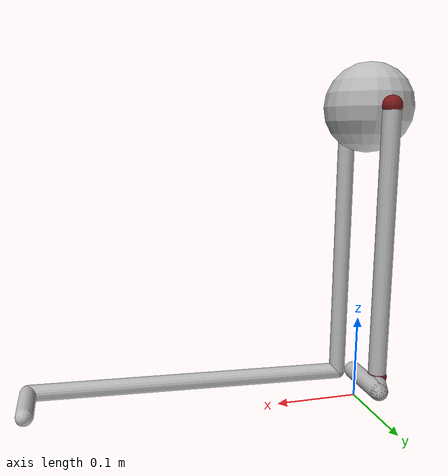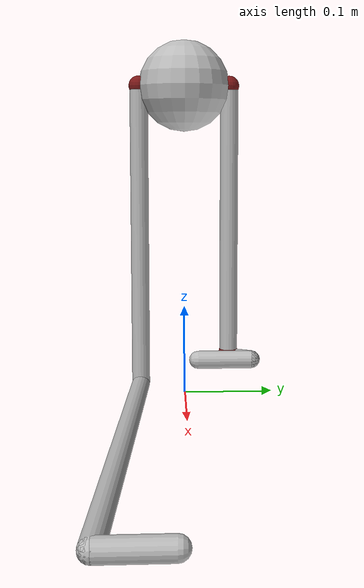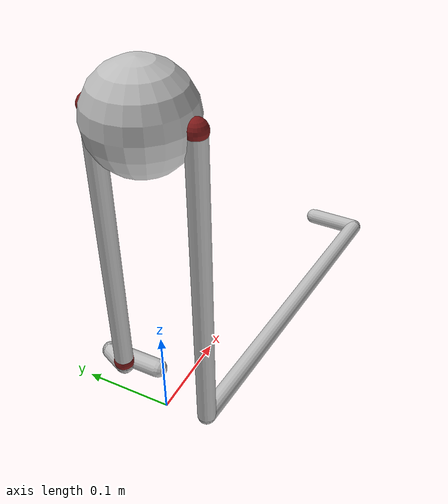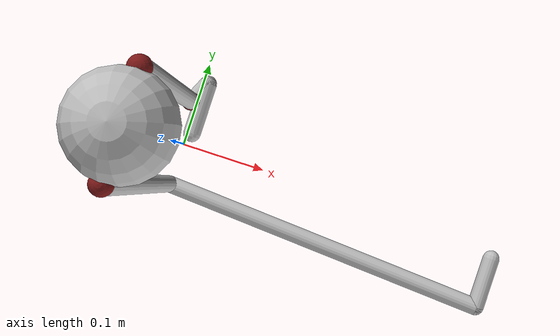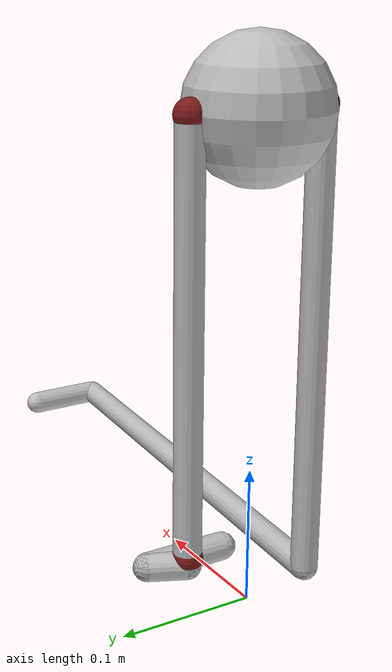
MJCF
<?xml version="1.0" ?>
<mujoco>
    <default>
        <joint armature="0.0" damping="0.01" type="hinge" range="-150 0" axis="0 -1 0"/>
        <geom condim="3" friction="1.5 1.0 1.0" margin="0.001"/>
        <default class="motor">
            <cylinder gear="100" ctrllimited="true" ctrlrange="-1 1"/>
        </default>
    </default>
    <worldbody>
        <body name="Base" pos="0.0 0.0 0.3477824980196569">
            <joint type="free"/>
            <geom type="sphere" rgba="0.75 0.75 0.75 1.0" size="0.05" mass="0.02"/>
            <body name="rod_0.1" pos="0.0 -0.05 -2.2448243122602095e-09">
                <geom name="geom_0.1" type="capsule" fromto="-0.0 -0.0 2.2448243122602095e-09 0.0 0.0 -2.2448243122602095e-09" size="0.01" rgba="0.75 0.75 0.75 1.0" density="159.15494309189535"/>
                <site name="site_0.1" pos="0 0 0" quat="0.7071067811865476 -0.0 0.7071067811865476 0.0"/>
                <joint name="joint_Base=rod_0.1" pos="-0.0 -0.0 2.2448243122602095e-09" range="-45 45"/>
                <body name="p0" pos="-0.0 -0.0 2.2448243122602095e-09">
                    <geom type="sphere" size="0.011000000000000001" rgba="0.5 0.1 0.1 1.0" density="23873.2414637843"/>
                    <site name="p0"/>
                </body>
                <body name="rod_1.2" pos="0.0 0.0 -0.16814124900982844">
                    <geom name="geom_1.2" type="capsule" fromto="-0.0 -0.0 0.16814124676500414 0.0 0.0 -0.16814124676500414" size="0.01" rgba="0.75 0.75 0.75 1.0" density="159.15494309189535"/>
                    <site name="site_1.2" pos="0 0 0" quat="0.7071067811865476 -0.0 0.7071067811865476 0.0"/>
                    <joint name="joint_rod_0.1=rod_1.2" pos="-0.0 -0.0 0.16814124676500414" range="-150 0"/>
                    <body name="p1" pos="-0.0 -0.0 0.16814124676500414">
                        <geom type="sphere" size="0.011000000000000001" rgba="0.5 0.1 0.1 1.0" density="23873.2414637843"/>
                        <site name="p1"/>
                    </body>
                    <body name="rod_2.3" pos="0.1955260503987358 -0.012500000000000004 -0.16814124676500414">
                        <geom name="geom_2.3" type="capsule" fromto="-0.1955260503987358 0.012500000000000004 -0.0 0.1955260503987358 -0.012500000000000004 0.0" size="0.01" rgba="0.75 0.75 0.75 1.0" density="159.15494309189535"/>
                        <site name="site_2.3" pos="0 0 0" quat="0.9994905487044292 0.0 0.0 -0.03191618790706488"/>
                        <body name="rod_3.4" pos="0.1955260503987358 0.017499999999999995 0.0">
                            <geom name="geom_3.4" type="capsule" fromto="-0.0 -0.03 -0.0 0.0 0.03 0.0" size="0.01" rgba="0.75 0.75 0.75 1.0" density="159.15494309189535"/>
                            <site name="site_3.4" pos="0 0 0" quat="0.7071067811865476 0.0 0.0 0.7071067811865476"/>
                        </body>
                    </body>
                </body>
            </body>
            <body name="rod_5.6" pos="0.0 0.05 -0.15057030342210137">
                <geom name="geom_5.6" type="capsule" fromto="-0.0 -0.0 0.15057030342210137 0.0 0.0 -0.15057030342210137" size="0.01" rgba="0.75 0.75 0.75 1.0" density="159.15494309189535"/>
                <site name="site_5.6" pos="0 0 0" quat="0.7071067811865476 -0.0 0.7071067811865476 0.0"/>
                <joint name="joint_Base=rod_5.6" pos="-0.0 -0.0 0.15057030342210137" range="-45 45"/>
                <body name="p5" pos="-0.0 -0.0 0.15057030342210137">
                    <geom type="sphere" size="0.011000000000000001" rgba="0.5 0.1 0.1 1.0" density="23873.2414637843"/>
                    <site name="p5"/>
                </body>
                <body name="rod_6.7" pos="0.0 0.0 -0.1535349403679455">
                    <geom name="geom_6.7" type="capsule" fromto="-0.0 -0.0 0.002964636945844118 0.0 0.0 -0.002964636945844118" size="0.01" rgba="0.75 0.75 0.75 1.0" density="159.15494309189535"/>
                    <site name="site_6.7" pos="0 0 0" quat="0.7071067811865476 -0.0 0.7071067811865476 0.0"/>
                    <joint name="joint_rod_5.6=rod_6.7" pos="-0.0 -0.0 0.002964636945844118" range="-150 0"/>
                    <body name="p6" pos="-0.0 -0.0 0.002964636945844118">
                        <geom type="sphere" size="0.011000000000000001" rgba="0.5 0.1 0.1 1.0" density="23873.2414637843"/>
                        <site name="p6"/>
                    </body>
                    <body name="rod_7.8" pos="0.005663699607116255 0.012500000000000004 -0.002964636945844118">
                        <geom name="geom_7.8" type="capsule" fromto="-0.005663699607116255 -0.012500000000000004 -0.0 0.005663699607116255 0.012500000000000004 0.0" size="0.01" rgba="0.75 0.75 0.75 1.0" density="159.15494309189535"/>
                        <site name="site_7.8" pos="0 0 0" quat="0.8404488199496957 0.0 0.0 0.5418909309493599"/>
                        <body name="rod_8.9" pos="0.005663699607116255 -0.017499999999999995 0.0">
                            <geom name="geom_8.9" type="capsule" fromto="-0.0 0.03 -0.0 0.0 -0.03 0.0" size="0.01" rgba="0.75 0.75 0.75 1.0" density="159.15494309189535"/>
                            <site name="site_8.9" pos="0 0 0" quat="0.7071067811865476 0.0 0.0 -0.7071067811865476"/>
                        </body>
                    </body>
                </body>
            </body>
        </body>
    </worldbody>
    <actuator/>
    <sensor>
        <accelerometer site="site_0.1"/>
        <gyro site="site_0.1"/>
        <magnetometer site="site_0.1"/>
        <accelerometer site="site_1.2"/>
        <gyro site="site_1.2"/>
        <magnetometer site="site_1.2"/>
        <accelerometer site="site_2.3"/>
        <gyro site="site_2.3"/>
        <magnetometer site="site_2.3"/>
        <accelerometer site="site_3.4"/>
        <gyro site="site_3.4"/>
        <magnetometer site="site_3.4"/>
        <accelerometer site="site_5.6"/>
        <gyro site="site_5.6"/>
        <magnetometer site="site_5.6"/>
        <accelerometer site="site_6.7"/>
        <gyro site="site_6.7"/>
        <magnetometer site="site_6.7"/>
        <accelerometer site="site_7.8"/>
        <gyro site="site_7.8"/>
        <magnetometer site="site_7.8"/>
        <accelerometer site="site_8.9"/>
        <gyro site="site_8.9"/>
        <magnetometer site="site_8.9"/>
    </sensor>
    <contact>
        <pair geom1="geom_0.1" geom2="floor"/>
        <pair geom1="geom_1.2" geom2="floor"/>
        <pair geom1="geom_2.3" geom2="floor"/>
        <pair geom1="geom_3.4" geom2="floor"/>
        <pair geom1="geom_5.6" geom2="floor"/>
        <pair geom1="geom_6.7" geom2="floor"/>
        <pair geom1="geom_7.8" geom2="floor"/>
        <pair geom1="geom_8.9" geom2="floor"/>
    </contact>
</mujoco>
